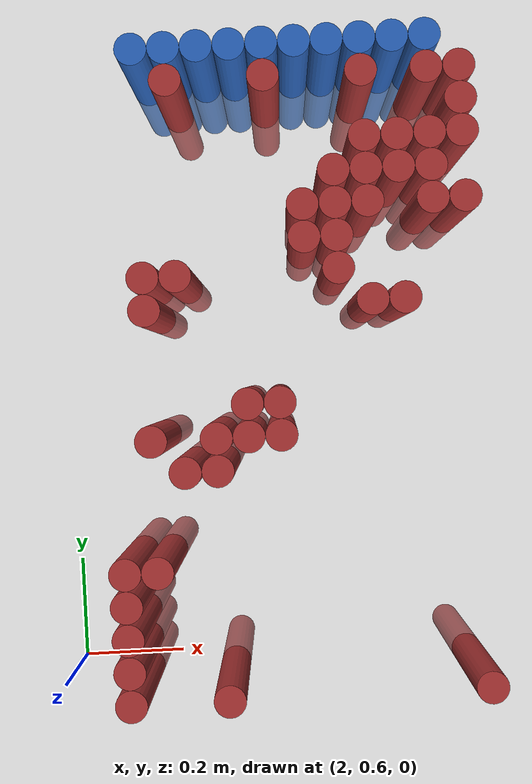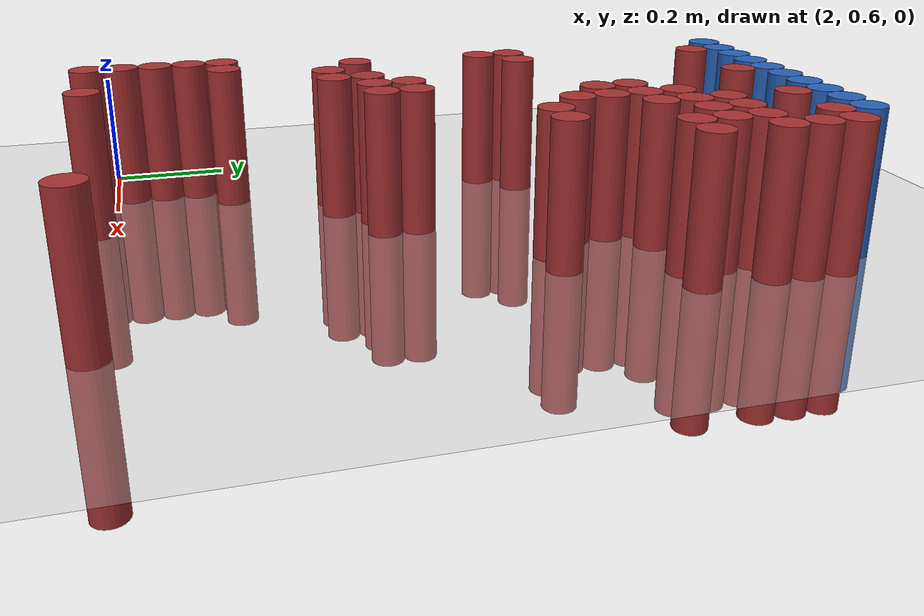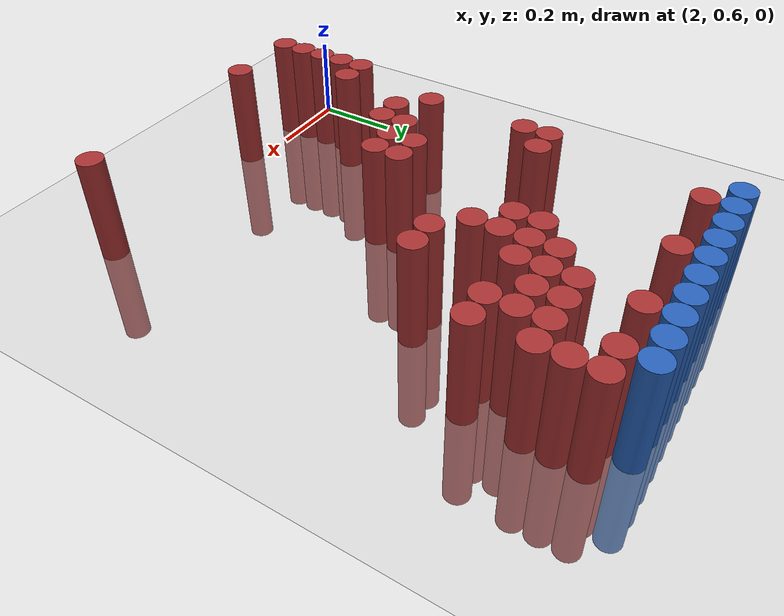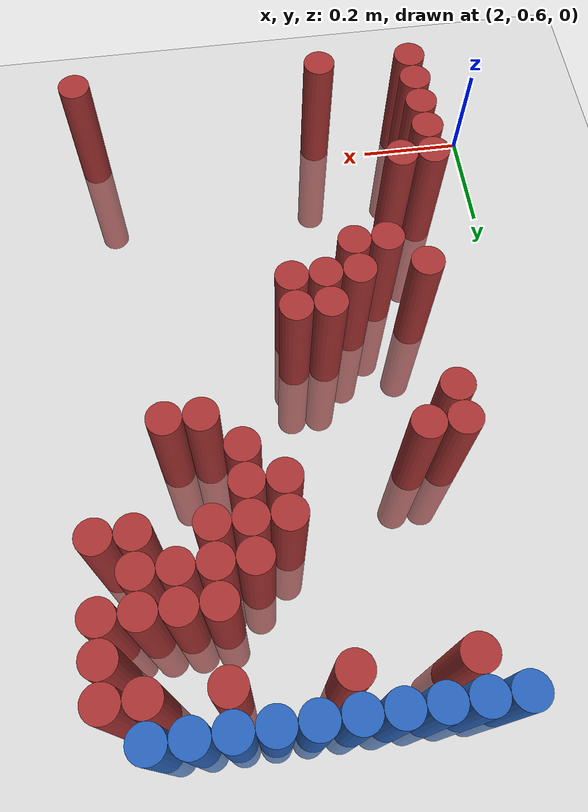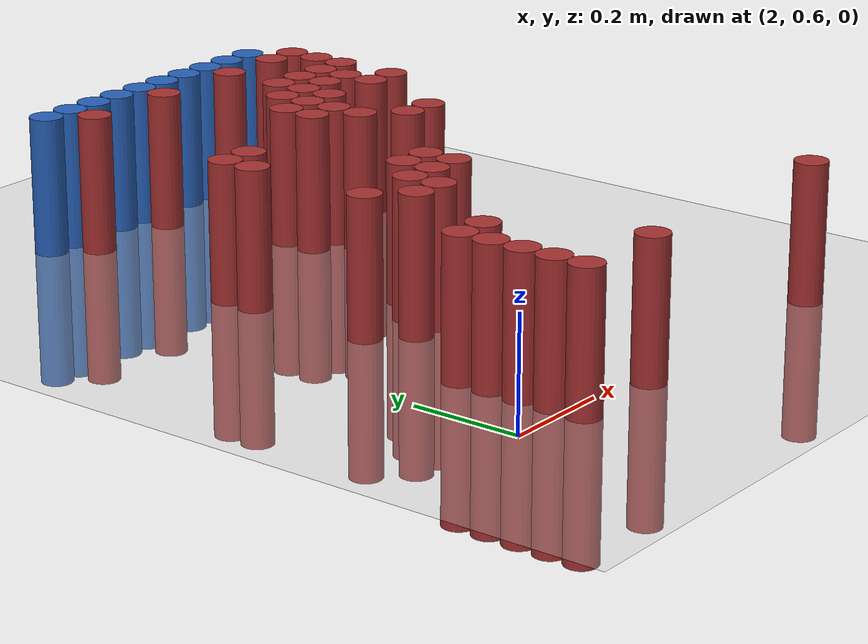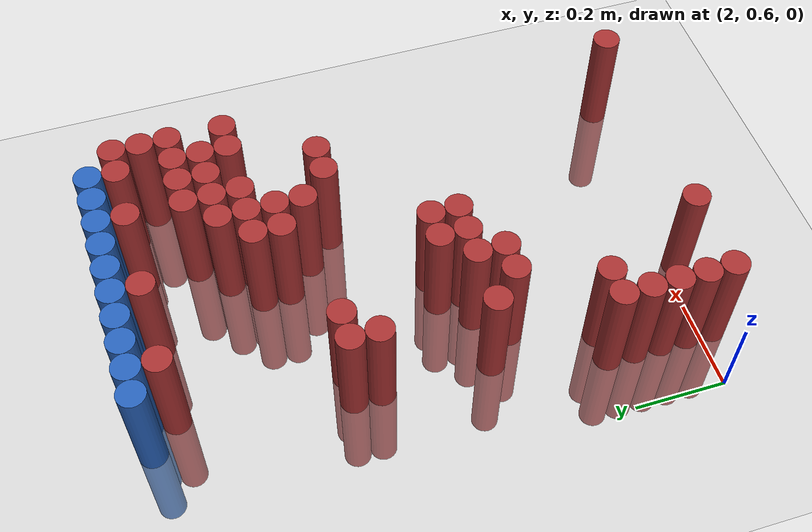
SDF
<sdf version="1.6">
 <world name="default">
  <model name="ground_plane">
   <static>1</static>
   <link name="link">
    <collision name="collision">
     <geometry><plane><normal>0 0 1</normal><size>100 100</size></plane></geometry>
     <surface><friction><ode><mu>100</mu><mu2>50</mu2></ode></friction></surface>
    </collision>
    <visual name="visual">
     <cast_shadows>0</cast_shadows>
     <geometry><plane><normal>0 0 1</normal><size>100 100</size></plane></geometry>
     <material>
      <script><uri>file://media/materials/scripts/gazebo.material</uri><name>Gazebo/Grey</name></script>
     </material>
    </visual>
   </link>
  </model>
  <model name="unit_cylinder_97">
   <static>1</static>
   <pose>2.190000 1.770000 0.000000 0.000000 0.000000 0.000000</pose>
   <link name="link">
    <inertial>
     <mass>1</mass>
     <inertia><ixx>0.145833</ixx><ixy>0</ixy><ixz>0</ixz><iyy>0.145833</iyy><iyz>0</iyz><izz>0.125</izz></inertia>
    </inertial>
    <collision name="collision">
     <geometry><cylinder><radius>0.030000</radius><length>0.5</length></cylinder></geometry>
    </collision>
    <visual name="visual">
     <geometry><cylinder><radius>0.030000</radius><length>0.5</length></cylinder></geometry>
     <material>
      <ambient>0.152000 0.379000 0.720000 1</ambient>
      <diffuse>0.152000 0.379000 0.720000 1</diffuse>
     </material>
     <material>
      <script><name>Gazebo/Grey</name><uri>file://media/materials/scripts/gazebo.material</uri></script>
     </material>
    </visual>
   </link>
  </model>
  <model name="unit_cylinder_98">
   <static>1</static>
   <pose>2.250000 1.770000 0.000000 0.000000 0.000000 0.000000</pose>
   <link name="link">
    <inertial>
     <mass>1</mass>
     <inertia><ixx>0.145833</ixx><ixy>0</ixy><ixz>0</ixz><iyy>0.145833</iyy><iyz>0</iyz><izz>0.125</izz></inertia>
    </inertial>
    <collision name="collision">
     <geometry><cylinder><radius>0.030000</radius><length>0.5</length></cylinder></geometry>
    </collision>
    <visual name="visual">
     <geometry><cylinder><radius>0.030000</radius><length>0.5</length></cylinder></geometry>
     <material>
      <ambient>0.152000 0.379000 0.720000 1</ambient>
      <diffuse>0.152000 0.379000 0.720000 1</diffuse>
     </material>
     <material>
      <script><name>Gazebo/Grey</name><uri>file://media/materials/scripts/gazebo.material</uri></script>
     </material>
    </visual>
   </link>
  </model>
  <model name="unit_cylinder_99">
   <static>1</static>
   <pose>2.310000 1.770000 0.000000 0.000000 0.000000 0.000000</pose>
   <link name="link">
    <inertial>
     <mass>1</mass>
     <inertia><ixx>0.145833</ixx><ixy>0</ixy><ixz>0</ixz><iyy>0.145833</iyy><iyz>0</iyz><izz>0.125</izz></inertia>
    </inertial>
    <collision name="collision">
     <geometry><cylinder><radius>0.030000</radius><length>0.5</length></cylinder></geometry>
    </collision>
    <visual name="visual">
     <geometry><cylinder><radius>0.030000</radius><length>0.5</length></cylinder></geometry>
     <material>
      <ambient>0.152000 0.379000 0.720000 1</ambient>
      <diffuse>0.152000 0.379000 0.720000 1</diffuse>
     </material>
     <material>
      <script><name>Gazebo/Grey</name><uri>file://media/materials/scripts/gazebo.material</uri></script>
     </material>
    </visual>
   </link>
  </model>
  <model name="unit_cylinder_100">
   <static>1</static>
   <pose>2.370000 1.770000 0.000000 0.000000 0.000000 0.000000</pose>
   <link name="link">
    <inertial>
     <mass>1</mass>
     <inertia><ixx>0.145833</ixx><ixy>0</ixy><ixz>0</ixz><iyy>0.145833</iyy><iyz>0</iyz><izz>0.125</izz></inertia>
    </inertial>
    <collision name="collision">
     <geometry><cylinder><radius>0.030000</radius><length>0.5</length></cylinder></geometry>
    </collision>
    <visual name="visual">
     <geometry><cylinder><radius>0.030000</radius><length>0.5</length></cylinder></geometry>
     <material>
      <ambient>0.152000 0.379000 0.720000 1</ambient>
      <diffuse>0.152000 0.379000 0.720000 1</diffuse>
     </material>
     <material>
      <script><name>Gazebo/Grey</name><uri>file://media/materials/scripts/gazebo.material</uri></script>
     </material>
    </visual>
   </link>
  </model>
  <model name="unit_cylinder_101">
   <static>1</static>
   <pose>2.430000 1.770000 0.000000 0.000000 0.000000 0.000000</pose>
   <link name="link">
    <inertial>
     <mass>1</mass>
     <inertia><ixx>0.145833</ixx><ixy>0</ixy><ixz>0</ixz><iyy>0.145833</iyy><iyz>0</iyz><izz>0.125</izz></inertia>
    </inertial>
    <collision name="collision">
     <geometry><cylinder><radius>0.030000</radius><length>0.5</length></cylinder></geometry>
    </collision>
    <visual name="visual">
     <geometry><cylinder><radius>0.030000</radius><length>0.5</length></cylinder></geometry>
     <material>
      <ambient>0.152000 0.379000 0.720000 1</ambient>
      <diffuse>0.152000 0.379000 0.720000 1</diffuse>
     </material>
     <material>
      <script><name>Gazebo/Grey</name><uri>file://media/materials/scripts/gazebo.material</uri></script>
     </material>
    </visual>
   </link>
  </model>
  <model name="unit_cylinder_102">
   <static>1</static>
   <pose>2.490000 1.770000 0.000000 0.000000 0.000000 0.000000</pose>
   <link name="link">
    <inertial>
     <mass>1</mass>
     <inertia><ixx>0.145833</ixx><ixy>0</ixy><ixz>0</ixz><iyy>0.145833</iyy><iyz>0</iyz><izz>0.125</izz></inertia>
    </inertial>
    <collision name="collision">
     <geometry><cylinder><radius>0.030000</radius><length>0.5</length></cylinder></geometry>
    </collision>
    <visual name="visual">
     <geometry><cylinder><radius>0.030000</radius><length>0.5</length></cylinder></geometry>
     <material>
      <ambient>0.152000 0.379000 0.720000 1</ambient>
      <diffuse>0.152000 0.379000 0.720000 1</diffuse>
     </material>
     <material>
      <script><name>Gazebo/Grey</name><uri>file://media/materials/scripts/gazebo.material</uri></script>
     </material>
    </visual>
   </link>
  </model>
  <model name="unit_cylinder_103">
   <static>1</static>
   <pose>2.550000 1.770000 0.000000 0.000000 0.000000 0.000000</pose>
   <link name="link">
    <inertial>
     <mass>1</mass>
     <inertia><ixx>0.145833</ixx><ixy>0</ixy><ixz>0</ixz><iyy>0.145833</iyy><iyz>0</iyz><izz>0.125</izz></inertia>
    </inertial>
    <collision name="collision">
     <geometry><cylinder><radius>0.030000</radius><length>0.5</length></cylinder></geometry>
    </collision>
    <visual name="visual">
     <geometry><cylinder><radius>0.030000</radius><length>0.5</length></cylinder></geometry>
     <material>
      <ambient>0.152000 0.379000 0.720000 1</ambient>
      <diffuse>0.152000 0.379000 0.720000 1</diffuse>
     </material>
     <material>
      <script><name>Gazebo/Grey</name><uri>file://media/materials/scripts/gazebo.material</uri></script>
     </material>
    </visual>
   </link>
  </model>
  <model name="unit_cylinder_104">
   <static>1</static>
   <pose>2.610000 1.770000 0.000000 0.000000 0.000000 0.000000</pose>
   <link name="link">
    <inertial>
     <mass>1</mass>
     <inertia><ixx>0.145833</ixx><ixy>0</ixy><ixz>0</ixz><iyy>0.145833</iyy><iyz>0</iyz><izz>0.125</izz></inertia>
    </inertial>
    <collision name="collision">
     <geometry><cylinder><radius>0.030000</radius><length>0.5</length></cylinder></geometry>
    </collision>
    <visual name="visual">
     <geometry><cylinder><radius>0.030000</radius><length>0.5</length></cylinder></geometry>
     <material>
      <ambient>0.152000 0.379000 0.720000 1</ambient>
      <diffuse>0.152000 0.379000 0.720000 1</diffuse>
     </material>
     <material>
      <script><name>Gazebo/Grey</name><uri>file://media/materials/scripts/gazebo.material</uri></script>
     </material>
    </visual>
   </link>
  </model>
  <model name="unit_cylinder_105">
   <static>1</static>
   <pose>2.670000 1.770000 0.000000 0.000000 0.000000 0.000000</pose>
   <link name="link">
    <inertial>
     <mass>1</mass>
     <inertia><ixx>0.145833</ixx><ixy>0</ixy><ixz>0</ixz><iyy>0.145833</iyy><iyz>0</iyz><izz>0.125</izz></inertia>
    </inertial>
    <collision name="collision">
     <geometry><cylinder><radius>0.030000</radius><length>0.5</length></cylinder></geometry>
    </collision>
    <visual name="visual">
     <geometry><cylinder><radius>0.030000</radius><length>0.5</length></cylinder></geometry>
     <material>
      <ambient>0.152000 0.379000 0.720000 1</ambient>
      <diffuse>0.152000 0.379000 0.720000 1</diffuse>
     </material>
     <material>
      <script><name>Gazebo/Grey</name><uri>file://media/materials/scripts/gazebo.material</uri></script>
     </material>
    </visual>
   </link>
  </model>
  <model name="unit_cylinder_106">
   <static>1</static>
   <pose>2.730000 1.770000 0.000000 0.000000 0.000000 0.000000</pose>
   <link name="link">
    <inertial>
     <mass>1</mass>
     <inertia><ixx>0.145833</ixx><ixy>0</ixy><ixz>0</ixz><iyy>0.145833</iyy><iyz>0</iyz><izz>0.125</izz></inertia>
    </inertial>
    <collision name="collision">
     <geometry><cylinder><radius>0.030000</radius><length>0.5</length></cylinder></geometry>
    </collision>
    <visual name="visual">
     <geometry><cylinder><radius>0.030000</radius><length>0.5</length></cylinder></geometry>
     <material>
      <ambient>0.152000 0.379000 0.720000 1</ambient>
      <diffuse>0.152000 0.379000 0.720000 1</diffuse>
     </material>
     <material>
      <script><name>Gazebo/Grey</name><uri>file://media/materials/scripts/gazebo.material</uri></script>
     </material>
    </visual>
   </link>
  </model>
  <model name="unit_cylinder_125">
   <static>1</static>
   <pose>2.250000 1.710000 0.000000 0.000000 0.000000 0.000000</pose>
   <link name="link">
    <inertial>
     <mass>1</mass>
     <inertia><ixx>0.145833</ixx><ixy>0</ixy><ixz>0</ixz><iyy>0.145833</iyy><iyz>0</iyz><izz>0.125</izz></inertia>
    </inertial>
    <collision name="collision">
     <geometry><cylinder><radius>0.030000</radius><length>0.5</length></cylinder></geometry>
    </collision>
    <visual name="visual">
     <geometry><cylinder><radius>0.030000</radius><length>0.5</length></cylinder></geometry>
     <material>
      <ambient>0.648000 0.192000 0.192000 1</ambient>
      <diffuse>0.648000 0.192000 0.192000 1</diffuse>
     </material>
     <material>
      <script><name>Gazebo/Grey</name><uri>file://media/materials/scripts/gazebo.material</uri></script>
     </material>
    </visual>
   </link>
  </model>
  <model name="unit_cylinder_126">
   <static>1</static>
   <pose>2.430000 1.710000 0.000000 0.000000 0.000000 0.000000</pose>
   <link name="link">
    <inertial>
     <mass>1</mass>
     <inertia><ixx>0.145833</ixx><ixy>0</ixy><ixz>0</ixz><iyy>0.145833</iyy><iyz>0</iyz><izz>0.125</izz></inertia>
    </inertial>
    <collision name="collision">
     <geometry><cylinder><radius>0.030000</radius><length>0.5</length></cylinder></geometry>
    </collision>
    <visual name="visual">
     <geometry><cylinder><radius>0.030000</radius><length>0.5</length></cylinder></geometry>
     <material>
      <ambient>0.648000 0.192000 0.192000 1</ambient>
      <diffuse>0.648000 0.192000 0.192000 1</diffuse>
     </material>
     <material>
      <script><name>Gazebo/Grey</name><uri>file://media/materials/scripts/gazebo.material</uri></script>
     </material>
    </visual>
   </link>
  </model>
  <model name="unit_cylinder_127">
   <static>1</static>
   <pose>2.610000 1.710000 0.000000 0.000000 0.000000 0.000000</pose>
   <link name="link">
    <inertial>
     <mass>1</mass>
     <inertia><ixx>0.145833</ixx><ixy>0</ixy><ixz>0</ixz><iyy>0.145833</iyy><iyz>0</iyz><izz>0.125</izz></inertia>
    </inertial>
    <collision name="collision">
     <geometry><cylinder><radius>0.030000</radius><length>0.5</length></cylinder></geometry>
    </collision>
    <visual name="visual">
     <geometry><cylinder><radius>0.030000</radius><length>0.5</length></cylinder></geometry>
     <material>
      <ambient>0.648000 0.192000 0.192000 1</ambient>
      <diffuse>0.648000 0.192000 0.192000 1</diffuse>
     </material>
     <material>
      <script><name>Gazebo/Grey</name><uri>file://media/materials/scripts/gazebo.material</uri></script>
     </material>
    </visual>
   </link>
  </model>
  <model name="unit_cylinder_128">
   <static>1</static>
   <pose>2.730000 1.710000 0.000000 0.000000 0.000000 0.000000</pose>
   <link name="link">
    <inertial>
     <mass>1</mass>
     <inertia><ixx>0.145833</ixx><ixy>0</ixy><ixz>0</ixz><iyy>0.145833</iyy><iyz>0</iyz><izz>0.125</izz></inertia>
    </inertial>
    <collision name="collision">
     <geometry><cylinder><radius>0.030000</radius><length>0.5</length></cylinder></geometry>
    </collision>
    <visual name="visual">
     <geometry><cylinder><radius>0.030000</radius><length>0.5</length></cylinder></geometry>
     <material>
      <ambient>0.648000 0.192000 0.192000 1</ambient>
      <diffuse>0.648000 0.192000 0.192000 1</diffuse>
     </material>
     <material>
      <script><name>Gazebo/Grey</name><uri>file://media/materials/scripts/gazebo.material</uri></script>
     </material>
    </visual>
   </link>
  </model>
  <model name="unit_cylinder_129">
   <static>1</static>
   <pose>2.790000 1.710000 0.000000 0.000000 0.000000 0.000000</pose>
   <link name="link">
    <inertial>
     <mass>1</mass>
     <inertia><ixx>0.145833</ixx><ixy>0</ixy><ixz>0</ixz><iyy>0.145833</iyy><iyz>0</iyz><izz>0.125</izz></inertia>
    </inertial>
    <collision name="collision">
     <geometry><cylinder><radius>0.030000</radius><length>0.5</length></cylinder></geometry>
    </collision>
    <visual name="visual">
     <geometry><cylinder><radius>0.030000</radius><length>0.5</length></cylinder></geometry>
     <material>
      <ambient>0.648000 0.192000 0.192000 1</ambient>
      <diffuse>0.648000 0.192000 0.192000 1</diffuse>
     </material>
     <material>
      <script><name>Gazebo/Grey</name><uri>file://media/materials/scripts/gazebo.material</uri></script>
     </material>
    </visual>
   </link>
  </model>
  <model name="unit_cylinder_136">
   <static>1</static>
   <pose>2.790000 1.650000 0.000000 0.000000 0.000000 0.000000</pose>
   <link name="link">
    <inertial>
     <mass>1</mass>
     <inertia><ixx>0.145833</ixx><ixy>0</ixy><ixz>0</ixz><iyy>0.145833</iyy><iyz>0</iyz><izz>0.125</izz></inertia>
    </inertial>
    <collision name="collision">
     <geometry><cylinder><radius>0.030000</radius><length>0.5</length></cylinder></geometry>
    </collision>
    <visual name="visual">
     <geometry><cylinder><radius>0.030000</radius><length>0.5</length></cylinder></geometry>
     <material>
      <ambient>0.648000 0.192000 0.192000 1</ambient>
      <diffuse>0.648000 0.192000 0.192000 1</diffuse>
     </material>
     <material>
      <script><name>Gazebo/Grey</name><uri>file://media/materials/scripts/gazebo.material</uri></script>
     </material>
    </visual>
   </link>
  </model>
  <model name="unit_cylinder_138">
   <static>1</static>
   <pose>2.610000 1.590000 0.000000 0.000000 0.000000 0.000000</pose>
   <link name="link">
    <inertial>
     <mass>1</mass>
     <inertia><ixx>0.145833</ixx><ixy>0</ixy><ixz>0</ixz><iyy>0.145833</iyy><iyz>0</iyz><izz>0.125</izz></inertia>
    </inertial>
    <collision name="collision">
     <geometry><cylinder><radius>0.030000</radius><length>0.5</length></cylinder></geometry>
    </collision>
    <visual name="visual">
     <geometry><cylinder><radius>0.030000</radius><length>0.5</length></cylinder></geometry>
     <material>
      <ambient>0.648000 0.192000 0.192000 1</ambient>
      <diffuse>0.648000 0.192000 0.192000 1</diffuse>
     </material>
     <material>
      <script><name>Gazebo/Grey</name><uri>file://media/materials/scripts/gazebo.material</uri></script>
     </material>
    </visual>
   </link>
  </model>
  <model name="unit_cylinder_139">
   <static>1</static>
   <pose>2.670000 1.590000 0.000000 0.000000 0.000000 0.000000</pose>
   <link name="link">
    <inertial>
     <mass>1</mass>
     <inertia><ixx>0.145833</ixx><ixy>0</ixy><ixz>0</ixz><iyy>0.145833</iyy><iyz>0</iyz><izz>0.125</izz></inertia>
    </inertial>
    <collision name="collision">
     <geometry><cylinder><radius>0.030000</radius><length>0.5</length></cylinder></geometry>
    </collision>
    <visual name="visual">
     <geometry><cylinder><radius>0.030000</radius><length>0.5</length></cylinder></geometry>
     <material>
      <ambient>0.648000 0.192000 0.192000 1</ambient>
      <diffuse>0.648000 0.192000 0.192000 1</diffuse>
     </material>
     <material>
      <script><name>Gazebo/Grey</name><uri>file://media/materials/scripts/gazebo.material</uri></script>
     </material>
    </visual>
   </link>
  </model>
  <model name="unit_cylinder_140">
   <static>1</static>
   <pose>2.730000 1.590000 0.000000 0.000000 0.000000 0.000000</pose>
   <link name="link">
    <inertial>
     <mass>1</mass>
     <inertia><ixx>0.145833</ixx><ixy>0</ixy><ixz>0</ixz><iyy>0.145833</iyy><iyz>0</iyz><izz>0.125</izz></inertia>
    </inertial>
    <collision name="collision">
     <geometry><cylinder><radius>0.030000</radius><length>0.5</length></cylinder></geometry>
    </collision>
    <visual name="visual">
     <geometry><cylinder><radius>0.030000</radius><length>0.5</length></cylinder></geometry>
     <material>
      <ambient>0.648000 0.192000 0.192000 1</ambient>
      <diffuse>0.648000 0.192000 0.192000 1</diffuse>
     </material>
     <material>
      <script><name>Gazebo/Grey</name><uri>file://media/materials/scripts/gazebo.material</uri></script>
     </material>
    </visual>
   </link>
  </model>
  <model name="unit_cylinder_141">
   <static>1</static>
   <pose>2.790000 1.590000 0.000000 0.000000 0.000000 0.000000</pose>
   <link name="link">
    <inertial>
     <mass>1</mass>
     <inertia><ixx>0.145833</ixx><ixy>0</ixy><ixz>0</ixz><iyy>0.145833</iyy><iyz>0</iyz><izz>0.125</izz></inertia>
    </inertial>
    <collision name="collision">
     <geometry><cylinder><radius>0.030000</radius><length>0.5</length></cylinder></geometry>
    </collision>
    <visual name="visual">
     <geometry><cylinder><radius>0.030000</radius><length>0.5</length></cylinder></geometry>
     <material>
      <ambient>0.648000 0.192000 0.192000 1</ambient>
      <diffuse>0.648000 0.192000 0.192000 1</diffuse>
     </material>
     <material>
      <script><name>Gazebo/Grey</name><uri>file://media/materials/scripts/gazebo.material</uri></script>
     </material>
    </visual>
   </link>
  </model>
  <model name="unit_cylinder_142">
   <static>1</static>
   <pose>2.550000 1.530000 0.000000 0.000000 0.000000 0.000000</pose>
   <link name="link">
    <inertial>
     <mass>1</mass>
     <inertia><ixx>0.145833</ixx><ixy>0</ixy><ixz>0</ixz><iyy>0.145833</iyy><iyz>0</iyz><izz>0.125</izz></inertia>
    </inertial>
    <collision name="collision">
     <geometry><cylinder><radius>0.030000</radius><length>0.5</length></cylinder></geometry>
    </collision>
    <visual name="visual">
     <geometry><cylinder><radius>0.030000</radius><length>0.5</length></cylinder></geometry>
     <material>
      <ambient>0.648000 0.192000 0.192000 1</ambient>
      <diffuse>0.648000 0.192000 0.192000 1</diffuse>
     </material>
     <material>
      <script><name>Gazebo/Grey</name><uri>file://media/materials/scripts/gazebo.material</uri></script>
     </material>
    </visual>
   </link>
  </model>
  <model name="unit_cylinder_143">
   <static>1</static>
   <pose>2.610000 1.530000 0.000000 0.000000 0.000000 0.000000</pose>
   <link name="link">
    <inertial>
     <mass>1</mass>
     <inertia><ixx>0.145833</ixx><ixy>0</ixy><ixz>0</ixz><iyy>0.145833</iyy><iyz>0</iyz><izz>0.125</izz></inertia>
    </inertial>
    <collision name="collision">
     <geometry><cylinder><radius>0.030000</radius><length>0.5</length></cylinder></geometry>
    </collision>
    <visual name="visual">
     <geometry><cylinder><radius>0.030000</radius><length>0.5</length></cylinder></geometry>
     <material>
      <ambient>0.648000 0.192000 0.192000 1</ambient>
      <diffuse>0.648000 0.192000 0.192000 1</diffuse>
     </material>
     <material>
      <script><name>Gazebo/Grey</name><uri>file://media/materials/scripts/gazebo.material</uri></script>
     </material>
    </visual>
   </link>
  </model>
  <model name="unit_cylinder_144">
   <static>1</static>
   <pose>2.670000 1.530000 0.000000 0.000000 0.000000 0.000000</pose>
   <link name="link">
    <inertial>
     <mass>1</mass>
     <inertia><ixx>0.145833</ixx><ixy>0</ixy><ixz>0</ixz><iyy>0.145833</iyy><iyz>0</iyz><izz>0.125</izz></inertia>
    </inertial>
    <collision name="collision">
     <geometry><cylinder><radius>0.030000</radius><length>0.5</length></cylinder></geometry>
    </collision>
    <visual name="visual">
     <geometry><cylinder><radius>0.030000</radius><length>0.5</length></cylinder></geometry>
     <material>
      <ambient>0.648000 0.192000 0.192000 1</ambient>
      <diffuse>0.648000 0.192000 0.192000 1</diffuse>
     </material>
     <material>
      <script><name>Gazebo/Grey</name><uri>file://media/materials/scripts/gazebo.material</uri></script>
     </material>
    </visual>
   </link>
  </model>
  <model name="unit_cylinder_145">
   <static>1</static>
   <pose>2.730000 1.530000 0.000000 0.000000 0.000000 0.000000</pose>
   <link name="link">
    <inertial>
     <mass>1</mass>
     <inertia><ixx>0.145833</ixx><ixy>0</ixy><ixz>0</ixz><iyy>0.145833</iyy><iyz>0</iyz><izz>0.125</izz></inertia>
    </inertial>
    <collision name="collision">
     <geometry><cylinder><radius>0.030000</radius><length>0.5</length></cylinder></geometry>
    </collision>
    <visual name="visual">
     <geometry><cylinder><radius>0.030000</radius><length>0.5</length></cylinder></geometry>
     <material>
      <ambient>0.648000 0.192000 0.192000 1</ambient>
      <diffuse>0.648000 0.192000 0.192000 1</diffuse>
     </material>
     <material>
      <script><name>Gazebo/Grey</name><uri>file://media/materials/scripts/gazebo.material</uri></script>
     </material>
    </visual>
   </link>
  </model>
  <model name="unit_cylinder_146">
   <static>1</static>
   <pose>2.490000 1.470000 0.000000 0.000000 0.000000 0.000000</pose>
   <link name="link">
    <inertial>
     <mass>1</mass>
     <inertia><ixx>0.145833</ixx><ixy>0</ixy><ixz>0</ixz><iyy>0.145833</iyy><iyz>0</iyz><izz>0.125</izz></inertia>
    </inertial>
    <collision name="collision">
     <geometry><cylinder><radius>0.030000</radius><length>0.5</length></cylinder></geometry>
    </collision>
    <visual name="visual">
     <geometry><cylinder><radius>0.030000</radius><length>0.5</length></cylinder></geometry>
     <material>
      <ambient>0.648000 0.192000 0.192000 1</ambient>
      <diffuse>0.648000 0.192000 0.192000 1</diffuse>
     </material>
     <material>
      <script><name>Gazebo/Grey</name><uri>file://media/materials/scripts/gazebo.material</uri></script>
     </material>
    </visual>
   </link>
  </model>
  <model name="unit_cylinder_147">
   <static>1</static>
   <pose>2.550000 1.470000 0.000000 0.000000 0.000000 0.000000</pose>
   <link name="link">
    <inertial>
     <mass>1</mass>
     <inertia><ixx>0.145833</ixx><ixy>0</ixy><ixz>0</ixz><iyy>0.145833</iyy><iyz>0</iyz><izz>0.125</izz></inertia>
    </inertial>
    <collision name="collision">
     <geometry><cylinder><radius>0.030000</radius><length>0.5</length></cylinder></geometry>
    </collision>
    <visual name="visual">
     <geometry><cylinder><radius>0.030000</radius><length>0.5</length></cylinder></geometry>
     <material>
      <ambient>0.648000 0.192000 0.192000 1</ambient>
      <diffuse>0.648000 0.192000 0.192000 1</diffuse>
     </material>
     <material>
      <script><name>Gazebo/Grey</name><uri>file://media/materials/scripts/gazebo.material</uri></script>
     </material>
    </visual>
   </link>
  </model>
  <model name="unit_cylinder_148">
   <static>1</static>
   <pose>2.610000 1.470000 0.000000 0.000000 0.000000 0.000000</pose>
   <link name="link">
    <inertial>
     <mass>1</mass>
     <inertia><ixx>0.145833</ixx><ixy>0</ixy><ixz>0</ixz><iyy>0.145833</iyy><iyz>0</iyz><izz>0.125</izz></inertia>
    </inertial>
    <collision name="collision">
     <geometry><cylinder><radius>0.030000</radius><length>0.5</length></cylinder></geometry>
    </collision>
    <visual name="visual">
     <geometry><cylinder><radius>0.030000</radius><length>0.5</length></cylinder></geometry>
     <material>
      <ambient>0.648000 0.192000 0.192000 1</ambient>
      <diffuse>0.648000 0.192000 0.192000 1</diffuse>
     </material>
     <material>
      <script><name>Gazebo/Grey</name><uri>file://media/materials/scripts/gazebo.material</uri></script>
     </material>
    </visual>
   </link>
  </model>
  <model name="unit_cylinder_149">
   <static>1</static>
   <pose>2.730000 1.470000 0.000000 0.000000 0.000000 0.000000</pose>
   <link name="link">
    <inertial>
     <mass>1</mass>
     <inertia><ixx>0.145833</ixx><ixy>0</ixy><ixz>0</ixz><iyy>0.145833</iyy><iyz>0</iyz><izz>0.125</izz></inertia>
    </inertial>
    <collision name="collision">
     <geometry><cylinder><radius>0.030000</radius><length>0.5</length></cylinder></geometry>
    </collision>
    <visual name="visual">
     <geometry><cylinder><radius>0.030000</radius><length>0.5</length></cylinder></geometry>
     <material>
      <ambient>0.648000 0.192000 0.192000 1</ambient>
      <diffuse>0.648000 0.192000 0.192000 1</diffuse>
     </material>
     <material>
      <script><name>Gazebo/Grey</name><uri>file://media/materials/scripts/gazebo.material</uri></script>
     </material>
    </visual>
   </link>
  </model>
  <model name="unit_cylinder_150">
   <static>1</static>
   <pose>2.790000 1.470000 0.000000 0.000000 0.000000 0.000000</pose>
   <link name="link">
    <inertial>
     <mass>1</mass>
     <inertia><ixx>0.145833</ixx><ixy>0</ixy><ixz>0</ixz><iyy>0.145833</iyy><iyz>0</iyz><izz>0.125</izz></inertia>
    </inertial>
    <collision name="collision">
     <geometry><cylinder><radius>0.030000</radius><length>0.5</length></cylinder></geometry>
    </collision>
    <visual name="visual">
     <geometry><cylinder><radius>0.030000</radius><length>0.5</length></cylinder></geometry>
     <material>
      <ambient>0.648000 0.192000 0.192000 1</ambient>
      <diffuse>0.648000 0.192000 0.192000 1</diffuse>
     </material>
     <material>
      <script><name>Gazebo/Grey</name><uri>file://media/materials/scripts/gazebo.material</uri></script>
     </material>
    </visual>
   </link>
  </model>
  <model name="unit_cylinder_152">
   <static>1</static>
   <pose>2.490000 1.410000 0.000000 0.000000 0.000000 0.000000</pose>
   <link name="link">
    <inertial>
     <mass>1</mass>
     <inertia><ixx>0.145833</ixx><ixy>0</ixy><ixz>0</ixz><iyy>0.145833</iyy><iyz>0</iyz><izz>0.125</izz></inertia>
    </inertial>
    <collision name="collision">
     <geometry><cylinder><radius>0.030000</radius><length>0.5</length></cylinder></geometry>
    </collision>
    <visual name="visual">
     <geometry><cylinder><radius>0.030000</radius><length>0.5</length></cylinder></geometry>
     <material>
      <ambient>0.648000 0.192000 0.192000 1</ambient>
      <diffuse>0.648000 0.192000 0.192000 1</diffuse>
     </material>
     <material>
      <script><name>Gazebo/Grey</name><uri>file://media/materials/scripts/gazebo.material</uri></script>
     </material>
    </visual>
   </link>
  </model>
  <model name="unit_cylinder_153">
   <static>1</static>
   <pose>2.550000 1.410000 0.000000 0.000000 0.000000 0.000000</pose>
   <link name="link">
    <inertial>
     <mass>1</mass>
     <inertia><ixx>0.145833</ixx><ixy>0</ixy><ixz>0</ixz><iyy>0.145833</iyy><iyz>0</iyz><izz>0.125</izz></inertia>
    </inertial>
    <collision name="collision">
     <geometry><cylinder><radius>0.030000</radius><length>0.5</length></cylinder></geometry>
    </collision>
    <visual name="visual">
     <geometry><cylinder><radius>0.030000</radius><length>0.5</length></cylinder></geometry>
     <material>
      <ambient>0.648000 0.192000 0.192000 1</ambient>
      <diffuse>0.648000 0.192000 0.192000 1</diffuse>
     </material>
     <material>
      <script><name>Gazebo/Grey</name><uri>file://media/materials/scripts/gazebo.material</uri></script>
     </material>
    </visual>
   </link>
  </model>
  <model name="unit_cylinder_159">
   <static>1</static>
   <pose>2.190000 1.350000 0.000000 0.000000 0.000000 0.000000</pose>
   <link name="link">
    <inertial>
     <mass>1</mass>
     <inertia><ixx>0.145833</ixx><ixy>0</ixy><ixz>0</ixz><iyy>0.145833</iyy><iyz>0</iyz><izz>0.125</izz></inertia>
    </inertial>
    <collision name="collision">
     <geometry><cylinder><radius>0.030000</radius><length>0.5</length></cylinder></geometry>
    </collision>
    <visual name="visual">
     <geometry><cylinder><radius>0.030000</radius><length>0.5</length></cylinder></geometry>
     <material>
      <ambient>0.648000 0.192000 0.192000 1</ambient>
      <diffuse>0.648000 0.192000 0.192000 1</diffuse>
     </material>
     <material>
      <script><name>Gazebo/Grey</name><uri>file://media/materials/scripts/gazebo.material</uri></script>
     </material>
    </visual>
   </link>
  </model>
  <model name="unit_cylinder_160">
   <static>1</static>
   <pose>2.250000 1.350000 0.000000 0.000000 0.000000 0.000000</pose>
   <link name="link">
    <inertial>
     <mass>1</mass>
     <inertia><ixx>0.145833</ixx><ixy>0</ixy><ixz>0</ixz><iyy>0.145833</iyy><iyz>0</iyz><izz>0.125</izz></inertia>
    </inertial>
    <collision name="collision">
     <geometry><cylinder><radius>0.030000</radius><length>0.5</length></cylinder></geometry>
    </collision>
    <visual name="visual">
     <geometry><cylinder><radius>0.030000</radius><length>0.5</length></cylinder></geometry>
     <material>
      <ambient>0.648000 0.192000 0.192000 1</ambient>
      <diffuse>0.648000 0.192000 0.192000 1</diffuse>
     </material>
     <material>
      <script><name>Gazebo/Grey</name><uri>file://media/materials/scripts/gazebo.material</uri></script>
     </material>
    </visual>
   </link>
  </model>
  <model name="unit_cylinder_161">
   <static>1</static>
   <pose>2.550000 1.350000 0.000000 0.000000 0.000000 0.000000</pose>
   <link name="link">
    <inertial>
     <mass>1</mass>
     <inertia><ixx>0.145833</ixx><ixy>0</ixy><ixz>0</ixz><iyy>0.145833</iyy><iyz>0</iyz><izz>0.125</izz></inertia>
    </inertial>
    <collision name="collision">
     <geometry><cylinder><radius>0.030000</radius><length>0.5</length></cylinder></geometry>
    </collision>
    <visual name="visual">
     <geometry><cylinder><radius>0.030000</radius><length>0.5</length></cylinder></geometry>
     <material>
      <ambient>0.648000 0.192000 0.192000 1</ambient>
      <diffuse>0.648000 0.192000 0.192000 1</diffuse>
     </material>
     <material>
      <script><name>Gazebo/Grey</name><uri>file://media/materials/scripts/gazebo.material</uri></script>
     </material>
    </visual>
   </link>
  </model>
  <model name="unit_cylinder_167">
   <static>1</static>
   <pose>2.190000 1.290000 0.000000 0.000000 0.000000 0.000000</pose>
   <link name="link">
    <inertial>
     <mass>1</mass>
     <inertia><ixx>0.145833</ixx><ixy>0</ixy><ixz>0</ixz><iyy>0.145833</iyy><iyz>0</iyz><izz>0.125</izz></inertia>
    </inertial>
    <collision name="collision">
     <geometry><cylinder><radius>0.030000</radius><length>0.5</length></cylinder></geometry>
    </collision>
    <visual name="visual">
     <geometry><cylinder><radius>0.030000</radius><length>0.5</length></cylinder></geometry>
     <material>
      <ambient>0.648000 0.192000 0.192000 1</ambient>
      <diffuse>0.648000 0.192000 0.192000 1</diffuse>
     </material>
     <material>
      <script><name>Gazebo/Grey</name><uri>file://media/materials/scripts/gazebo.material</uri></script>
     </material>
    </visual>
   </link>
  </model>
  <model name="unit_cylinder_168">
   <static>1</static>
   <pose>2.610000 1.290000 0.000000 0.000000 0.000000 0.000000</pose>
   <link name="link">
    <inertial>
     <mass>1</mass>
     <inertia><ixx>0.145833</ixx><ixy>0</ixy><ixz>0</ixz><iyy>0.145833</iyy><iyz>0</iyz><izz>0.125</izz></inertia>
    </inertial>
    <collision name="collision">
     <geometry><cylinder><radius>0.030000</radius><length>0.5</length></cylinder></geometry>
    </collision>
    <visual name="visual">
     <geometry><cylinder><radius>0.030000</radius><length>0.5</length></cylinder></geometry>
     <material>
      <ambient>0.648000 0.192000 0.192000 1</ambient>
      <diffuse>0.648000 0.192000 0.192000 1</diffuse>
     </material>
     <material>
      <script><name>Gazebo/Grey</name><uri>file://media/materials/scripts/gazebo.material</uri></script>
     </material>
    </visual>
   </link>
  </model>
  <model name="unit_cylinder_169">
   <static>1</static>
   <pose>2.670000 1.290000 0.000000 0.000000 0.000000 0.000000</pose>
   <link name="link">
    <inertial>
     <mass>1</mass>
     <inertia><ixx>0.145833</ixx><ixy>0</ixy><ixz>0</ixz><iyy>0.145833</iyy><iyz>0</iyz><izz>0.125</izz></inertia>
    </inertial>
    <collision name="collision">
     <geometry><cylinder><radius>0.030000</radius><length>0.5</length></cylinder></geometry>
    </collision>
    <visual name="visual">
     <geometry><cylinder><radius>0.030000</radius><length>0.5</length></cylinder></geometry>
     <material>
      <ambient>0.648000 0.192000 0.192000 1</ambient>
      <diffuse>0.648000 0.192000 0.192000 1</diffuse>
     </material>
     <material>
      <script><name>Gazebo/Grey</name><uri>file://media/materials/scripts/gazebo.material</uri></script>
     </material>
    </visual>
   </link>
  </model>
  <model name="unit_cylinder_178">
   <static>1</static>
   <pose>2.370000 1.110000 0.000000 0.000000 0.000000 0.000000</pose>
   <link name="link">
    <inertial>
     <mass>1</mass>
     <inertia><ixx>0.145833</ixx><ixy>0</ixy><ixz>0</ixz><iyy>0.145833</iyy><iyz>0</iyz><izz>0.125</izz></inertia>
    </inertial>
    <collision name="collision">
     <geometry><cylinder><radius>0.030000</radius><length>0.5</length></cylinder></geometry>
    </collision>
    <visual name="visual">
     <geometry><cylinder><radius>0.030000</radius><length>0.5</length></cylinder></geometry>
     <material>
      <ambient>0.648000 0.192000 0.192000 1</ambient>
      <diffuse>0.648000 0.192000 0.192000 1</diffuse>
     </material>
     <material>
      <script><name>Gazebo/Grey</name><uri>file://media/materials/scripts/gazebo.material</uri></script>
     </material>
    </visual>
   </link>
  </model>
  <model name="unit_cylinder_179">
   <static>1</static>
   <pose>2.430000 1.110000 0.000000 0.000000 0.000000 0.000000</pose>
   <link name="link">
    <inertial>
     <mass>1</mass>
     <inertia><ixx>0.145833</ixx><ixy>0</ixy><ixz>0</ixz><iyy>0.145833</iyy><iyz>0</iyz><izz>0.125</izz></inertia>
    </inertial>
    <collision name="collision">
     <geometry><cylinder><radius>0.030000</radius><length>0.5</length></cylinder></geometry>
    </collision>
    <visual name="visual">
     <geometry><cylinder><radius>0.030000</radius><length>0.5</length></cylinder></geometry>
     <material>
      <ambient>0.648000 0.192000 0.192000 1</ambient>
      <diffuse>0.648000 0.192000 0.192000 1</diffuse>
     </material>
     <material>
      <script><name>Gazebo/Grey</name><uri>file://media/materials/scripts/gazebo.material</uri></script>
     </material>
    </visual>
   </link>
  </model>
  <model name="unit_cylinder_182">
   <static>1</static>
   <pose>2.190000 1.050000 0.000000 0.000000 0.000000 0.000000</pose>
   <link name="link">
    <inertial>
     <mass>1</mass>
     <inertia><ixx>0.145833</ixx><ixy>0</ixy><ixz>0</ixz><iyy>0.145833</iyy><iyz>0</iyz><izz>0.125</izz></inertia>
    </inertial>
    <collision name="collision">
     <geometry><cylinder><radius>0.030000</radius><length>0.5</length></cylinder></geometry>
    </collision>
    <visual name="visual">
     <geometry><cylinder><radius>0.030000</radius><length>0.5</length></cylinder></geometry>
     <material>
      <ambient>0.648000 0.192000 0.192000 1</ambient>
      <diffuse>0.648000 0.192000 0.192000 1</diffuse>
     </material>
     <material>
      <script><name>Gazebo/Grey</name><uri>file://media/materials/scripts/gazebo.material</uri></script>
     </material>
    </visual>
   </link>
  </model>
  <model name="unit_cylinder_183">
   <static>1</static>
   <pose>2.310000 1.050000 0.000000 0.000000 0.000000 0.000000</pose>
   <link name="link">
    <inertial>
     <mass>1</mass>
     <inertia><ixx>0.145833</ixx><ixy>0</ixy><ixz>0</ixz><iyy>0.145833</iyy><iyz>0</iyz><izz>0.125</izz></inertia>
    </inertial>
    <collision name="collision">
     <geometry><cylinder><radius>0.030000</radius><length>0.5</length></cylinder></geometry>
    </collision>
    <visual name="visual">
     <geometry><cylinder><radius>0.030000</radius><length>0.5</length></cylinder></geometry>
     <material>
      <ambient>0.648000 0.192000 0.192000 1</ambient>
      <diffuse>0.648000 0.192000 0.192000 1</diffuse>
     </material>
     <material>
      <script><name>Gazebo/Grey</name><uri>file://media/materials/scripts/gazebo.material</uri></script>
     </material>
    </visual>
   </link>
  </model>
  <model name="unit_cylinder_184">
   <static>1</static>
   <pose>2.370000 1.050000 0.000000 0.000000 0.000000 0.000000</pose>
   <link name="link">
    <inertial>
     <mass>1</mass>
     <inertia><ixx>0.145833</ixx><ixy>0</ixy><ixz>0</ixz><iyy>0.145833</iyy><iyz>0</iyz><izz>0.125</izz></inertia>
    </inertial>
    <collision name="collision">
     <geometry><cylinder><radius>0.030000</radius><length>0.5</length></cylinder></geometry>
    </collision>
    <visual name="visual">
     <geometry><cylinder><radius>0.030000</radius><length>0.5</length></cylinder></geometry>
     <material>
      <ambient>0.648000 0.192000 0.192000 1</ambient>
      <diffuse>0.648000 0.192000 0.192000 1</diffuse>
     </material>
     <material>
      <script><name>Gazebo/Grey</name><uri>file://media/materials/scripts/gazebo.material</uri></script>
     </material>
    </visual>
   </link>
  </model>
  <model name="unit_cylinder_185">
   <static>1</static>
   <pose>2.430000 1.050000 0.000000 0.000000 0.000000 0.000000</pose>
   <link name="link">
    <inertial>
     <mass>1</mass>
     <inertia><ixx>0.145833</ixx><ixy>0</ixy><ixz>0</ixz><iyy>0.145833</iyy><iyz>0</iyz><izz>0.125</izz></inertia>
    </inertial>
    <collision name="collision">
     <geometry><cylinder><radius>0.030000</radius><length>0.5</length></cylinder></geometry>
    </collision>
    <visual name="visual">
     <geometry><cylinder><radius>0.030000</radius><length>0.5</length></cylinder></geometry>
     <material>
      <ambient>0.648000 0.192000 0.192000 1</ambient>
      <diffuse>0.648000 0.192000 0.192000 1</diffuse>
     </material>
     <material>
      <script><name>Gazebo/Grey</name><uri>file://media/materials/scripts/gazebo.material</uri></script>
     </material>
    </visual>
   </link>
  </model>
  <model name="unit_cylinder_187">
   <static>1</static>
   <pose>2.250000 0.990000 0.000000 0.000000 0.000000 0.000000</pose>
   <link name="link">
    <inertial>
     <mass>1</mass>
     <inertia><ixx>0.145833</ixx><ixy>0</ixy><ixz>0</ixz><iyy>0.145833</iyy><iyz>0</iyz><izz>0.125</izz></inertia>
    </inertial>
    <collision name="collision">
     <geometry><cylinder><radius>0.030000</radius><length>0.5</length></cylinder></geometry>
    </collision>
    <visual name="visual">
     <geometry><cylinder><radius>0.030000</radius><length>0.5</length></cylinder></geometry>
     <material>
      <ambient>0.648000 0.192000 0.192000 1</ambient>
      <diffuse>0.648000 0.192000 0.192000 1</diffuse>
     </material>
     <material>
      <script><name>Gazebo/Grey</name><uri>file://media/materials/scripts/gazebo.material</uri></script>
     </material>
    </visual>
   </link>
  </model>
  <model name="unit_cylinder_188">
   <static>1</static>
   <pose>2.310000 0.990000 0.000000 0.000000 0.000000 0.000000</pose>
   <link name="link">
    <inertial>
     <mass>1</mass>
     <inertia><ixx>0.145833</ixx><ixy>0</ixy><ixz>0</ixz><iyy>0.145833</iyy><iyz>0</iyz><izz>0.125</izz></inertia>
    </inertial>
    <collision name="collision">
     <geometry><cylinder><radius>0.030000</radius><length>0.5</length></cylinder></geometry>
    </collision>
    <visual name="visual">
     <geometry><cylinder><radius>0.030000</radius><length>0.5</length></cylinder></geometry>
     <material>
      <ambient>0.648000 0.192000 0.192000 1</ambient>
      <diffuse>0.648000 0.192000 0.192000 1</diffuse>
     </material>
     <material>
      <script><name>Gazebo/Grey</name><uri>file://media/materials/scripts/gazebo.material</uri></script>
     </material>
    </visual>
   </link>
  </model>
  <model name="unit_cylinder_189">
   <static>1</static>
   <pose>2.130000 0.810000 0.000000 0.000000 0.000000 0.000000</pose>
   <link name="link">
    <inertial>
     <mass>1</mass>
     <inertia><ixx>0.145833</ixx><ixy>0</ixy><ixz>0</ixz><iyy>0.145833</iyy><iyz>0</iyz><izz>0.125</izz></inertia>
    </inertial>
    <collision name="collision">
     <geometry><cylinder><radius>0.030000</radius><length>0.5</length></cylinder></geometry>
    </collision>
    <visual name="visual">
     <geometry><cylinder><radius>0.030000</radius><length>0.5</length></cylinder></geometry>
     <material>
      <ambient>0.648000 0.192000 0.192000 1</ambient>
      <diffuse>0.648000 0.192000 0.192000 1</diffuse>
     </material>
     <material>
      <script><name>Gazebo/Grey</name><uri>file://media/materials/scripts/gazebo.material</uri></script>
     </material>
    </visual>
   </link>
  </model>
  <model name="unit_cylinder_190">
   <static>1</static>
   <pose>2.190000 0.810000 0.000000 0.000000 0.000000 0.000000</pose>
   <link name="link">
    <inertial>
     <mass>1</mass>
     <inertia><ixx>0.145833</ixx><ixy>0</ixy><ixz>0</ixz><iyy>0.145833</iyy><iyz>0</iyz><izz>0.125</izz></inertia>
    </inertial>
    <collision name="collision">
     <geometry><cylinder><radius>0.030000</radius><length>0.5</length></cylinder></geometry>
    </collision>
    <visual name="visual">
     <geometry><cylinder><radius>0.030000</radius><length>0.5</length></cylinder></geometry>
     <material>
      <ambient>0.648000 0.192000 0.192000 1</ambient>
      <diffuse>0.648000 0.192000 0.192000 1</diffuse>
     </material>
     <material>
      <script><name>Gazebo/Grey</name><uri>file://media/materials/scripts/gazebo.material</uri></script>
     </material>
    </visual>
   </link>
  </model>
  <model name="unit_cylinder_192">
   <static>1</static>
   <pose>2.130000 0.750000 0.000000 0.000000 0.000000 0.000000</pose>
   <link name="link">
    <inertial>
     <mass>1</mass>
     <inertia><ixx>0.145833</ixx><ixy>0</ixy><ixz>0</ixz><iyy>0.145833</iyy><iyz>0</iyz><izz>0.125</izz></inertia>
    </inertial>
    <collision name="collision">
     <geometry><cylinder><radius>0.030000</radius><length>0.5</length></cylinder></geometry>
    </collision>
    <visual name="visual">
     <geometry><cylinder><radius>0.030000</radius><length>0.5</length></cylinder></geometry>
     <material>
      <ambient>0.648000 0.192000 0.192000 1</ambient>
      <diffuse>0.648000 0.192000 0.192000 1</diffuse>
     </material>
     <material>
      <script><name>Gazebo/Grey</name><uri>file://media/materials/scripts/gazebo.material</uri></script>
     </material>
    </visual>
   </link>
  </model>
  <model name="unit_cylinder_194">
   <static>1</static>
   <pose>2.130000 0.690000 0.000000 0.000000 0.000000 0.000000</pose>
   <link name="link">
    <inertial>
     <mass>1</mass>
     <inertia><ixx>0.145833</ixx><ixy>0</ixy><ixz>0</ixz><iyy>0.145833</iyy><iyz>0</iyz><izz>0.125</izz></inertia>
    </inertial>
    <collision name="collision">
     <geometry><cylinder><radius>0.030000</radius><length>0.5</length></cylinder></geometry>
    </collision>
    <visual name="visual">
     <geometry><cylinder><radius>0.030000</radius><length>0.5</length></cylinder></geometry>
     <material>
      <ambient>0.648000 0.192000 0.192000 1</ambient>
      <diffuse>0.648000 0.192000 0.192000 1</diffuse>
     </material>
     <material>
      <script><name>Gazebo/Grey</name><uri>file://media/materials/scripts/gazebo.material</uri></script>
     </material>
    </visual>
   </link>
  </model>
  <model name="unit_cylinder_196">
   <static>1</static>
   <pose>2.130000 0.630000 0.000000 0.000000 0.000000 0.000000</pose>
   <link name="link">
    <inertial>
     <mass>1</mass>
     <inertia><ixx>0.145833</ixx><ixy>0</ixy><ixz>0</ixz><iyy>0.145833</iyy><iyz>0</iyz><izz>0.125</izz></inertia>
    </inertial>
    <collision name="collision">
     <geometry><cylinder><radius>0.030000</radius><length>0.5</length></cylinder></geometry>
    </collision>
    <visual name="visual">
     <geometry><cylinder><radius>0.030000</radius><length>0.5</length></cylinder></geometry>
     <material>
      <ambient>0.648000 0.192000 0.192000 1</ambient>
      <diffuse>0.648000 0.192000 0.192000 1</diffuse>
     </material>
     <material>
      <script><name>Gazebo/Grey</name><uri>file://media/materials/scripts/gazebo.material</uri></script>
     </material>
    </visual>
   </link>
  </model>
  <model name="unit_cylinder_199">
   <static>1</static>
   <pose>2.130000 0.570000 0.000000 0.000000 0.000000 0.000000</pose>
   <link name="link">
    <inertial>
     <mass>1</mass>
     <inertia><ixx>0.145833</ixx><ixy>0</ixy><ixz>0</ixz><iyy>0.145833</iyy><iyz>0</iyz><izz>0.125</izz></inertia>
    </inertial>
    <collision name="collision">
     <geometry><cylinder><radius>0.030000</radius><length>0.5</length></cylinder></geometry>
    </collision>
    <visual name="visual">
     <geometry><cylinder><radius>0.030000</radius><length>0.5</length></cylinder></geometry>
     <material>
      <ambient>0.648000 0.192000 0.192000 1</ambient>
      <diffuse>0.648000 0.192000 0.192000 1</diffuse>
     </material>
     <material>
      <script><name>Gazebo/Grey</name><uri>file://media/materials/scripts/gazebo.material</uri></script>
     </material>
    </visual>
   </link>
  </model>
  <model name="unit_cylinder_200">
   <static>1</static>
   <pose>2.310000 0.570000 0.000000 0.000000 0.000000 0.000000</pose>
   <link name="link">
    <inertial>
     <mass>1</mass>
     <inertia><ixx>0.145833</ixx><ixy>0</ixy><ixz>0</ixz><iyy>0.145833</iyy><iyz>0</iyz><izz>0.125</izz></inertia>
    </inertial>
    <collision name="collision">
     <geometry><cylinder><radius>0.030000</radius><length>0.5</length></cylinder></geometry>
    </collision>
    <visual name="visual">
     <geometry><cylinder><radius>0.030000</radius><length>0.5</length></cylinder></geometry>
     <material>
      <ambient>0.648000 0.192000 0.192000 1</ambient>
      <diffuse>0.648000 0.192000 0.192000 1</diffuse>
     </material>
     <material>
      <script><name>Gazebo/Grey</name><uri>file://media/materials/scripts/gazebo.material</uri></script>
     </material>
    </visual>
   </link>
  </model>
  <model name="unit_cylinder_201">
   <static>1</static>
   <pose>2.790000 0.570000 0.000000 0.000000 0.000000 0.000000</pose>
   <link name="link">
    <inertial>
     <mass>1</mass>
     <inertia><ixx>0.145833</ixx><ixy>0</ixy><ixz>0</ixz><iyy>0.145833</iyy><iyz>0</iyz><izz>0.125</izz></inertia>
    </inertial>
    <collision name="collision">
     <geometry><cylinder><radius>0.030000</radius><length>0.5</length></cylinder></geometry>
    </collision>
    <visual name="visual">
     <geometry><cylinder><radius>0.030000</radius><length>0.5</length></cylinder></geometry>
     <material>
      <ambient>0.648000 0.192000 0.192000 1</ambient>
      <diffuse>0.648000 0.192000 0.192000 1</diffuse>
     </material>
     <material>
      <script><name>Gazebo/Grey</name><uri>file://media/materials/scripts/gazebo.material</uri></script>
     </material>
    </visual>
   </link>
  </model>
 </world>
</sdf>
